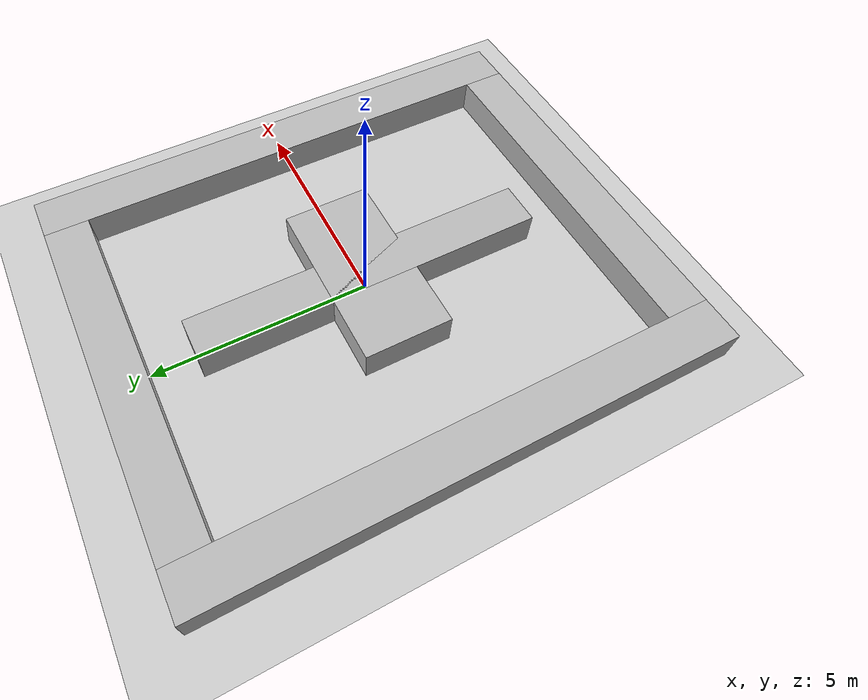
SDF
<sdf version='1.6'>
  <world name='default'>

    <include>
      <uri>model://ground_plane</uri>
    </include>

    <include>
      <uri>model://sun</uri>
    </include>

    <model name='brick_wall_u'>
      <static>1</static>
      <link name='chassis'>
        <pose frame=''>0 0 0 0 0 0</pose>
        <collision name='collision'>
          <geometry>
            <box>
              <size>8 1 1.5</size>
            </box>
          </geometry>
          <max_contacts>10</max_contacts>
        </collision>
        <visual name='visual'>
          <geometry>
            <mesh>
              <uri>model://brick_box_3x1x3/meshes/simple_box.dae</uri>
              <scale>8 1 1.5</scale>
            </mesh>
          </geometry>
          <material>
            <script>
              <uri>model://brick_box_3x1x3/materials/scripts</uri>
              <uri>model://brick_box_3x1x3/materials/textures</uri>
              <name>BrickBox/Diffuse</name>
            </script>
          </material>
        </visual>
        <self_collide>0</self_collide>
        <kinematic>0</kinematic>
        <gravity>1</gravity>
      </link>
      <pose frame=''>0 5.5 0 0 0 0</pose>
    </model>

    <model name='brick_wall_d'>
      <static>1</static>
      <link name='chassis'>
        <pose frame=''>0 0 0 0 0 0</pose>
        <collision name='collision'>
          <geometry>
            <box>
              <size>8 1 1.5</size>
            </box>
          </geometry>
          <max_contacts>10</max_contacts>
        </collision>
        <visual name='visual'>
          <geometry>
            <mesh>
              <uri>model://brick_box_3x1x3/meshes/simple_box.dae</uri>
              <scale>8 1 1.5</scale>
            </mesh>
          </geometry>
          <material>
            <script>
              <uri>model://brick_box_3x1x3/materials/scripts</uri>
              <uri>model://brick_box_3x1x3/materials/textures</uri>
              <name>BrickBox/Diffuse</name>
            </script>
          </material>
        </visual>
        <self_collide>0</self_collide>
        <kinematic>0</kinematic>
        <gravity>1</gravity>
      </link>
      <pose frame=''>0 -5.5 0 0 0 0</pose>
    </model>

    <model name='brick_wall_l'>
      <static>1</static>
      <link name='chassis'>
        <pose frame=''>0 0 0 0 0 0</pose>
        <collision name='collision'>
          <geometry>
            <box>
              <size>1 12 1.5</size>
            </box>
          </geometry>
          <max_contacts>10</max_contacts>
        </collision>
        <visual name='visual'>
          <geometry>
            <mesh>
              <uri>model://brick_box_3x1x3/meshes/simple_box.dae</uri>
              <scale>1 12 1.5</scale>
            </mesh>
          </geometry>
          <material>
            <script>
              <uri>model://brick_box_3x1x3/materials/scripts</uri>
              <uri>model://brick_box_3x1x3/materials/textures</uri>
              <name>BrickBox/Diffuse</name>
            </script>
          </material>
        </visual>
        <self_collide>0</self_collide>
        <kinematic>0</kinematic>
        <gravity>1</gravity>
      </link>
      <pose frame=''>-4.5 0 0 0 0 0</pose>
    </model>

    <model name='brick_wall_r'>
      <static>1</static>
      <link name='chassis'>
        <pose frame=''>0 0 0 0 0 0</pose>
        <collision name='collision'>
          <geometry>
            <box>
              <size>1 12 1.5</size>
            </box>
          </geometry>
          <max_contacts>10</max_contacts>
        </collision>
        <visual name='visual'>
          <geometry>
            <mesh>
              <uri>model://brick_box_3x1x3/meshes/simple_box.dae</uri>
              <scale>1 12 1.5</scale>
            </mesh>
          </geometry>
          <material>
            <script>
              <uri>model://brick_box_3x1x3/materials/scripts</uri>
              <uri>model://brick_box_3x1x3/materials/textures</uri>
              <name>BrickBox/Diffuse</name>
            </script>
          </material>
        </visual>
        <self_collide>0</self_collide>
        <kinematic>0</kinematic>
        <gravity>1</gravity>
      </link>
      <pose frame=''>4.5 0 0 0 0 0</pose>
    </model>

    <model name='brick_wall_mh'>
      <static>1</static>
      <link name='chassis'>
        <pose frame=''>0 0 0 0 0 0</pose>
        <collision name='collision'>
          <geometry>
            <box>
              <size>4 2 1.5</size>
            </box>
          </geometry>
          <max_contacts>10</max_contacts>
        </collision>
        <visual name='visual'>
          <geometry>
            <mesh>
              <uri>model://brick_box_3x1x3/meshes/simple_box.dae</uri>
              <scale>4 2 1.5</scale>
            </mesh>
          </geometry>
          <material>
            <script>
              <uri>model://brick_box_3x1x3/materials/scripts</uri>
              <uri>model://brick_box_3x1x3/materials/textures</uri>
              <name>BrickBox/Diffuse</name>
            </script>
          </material>
        </visual>
        <self_collide>0</self_collide>
        <kinematic>0</kinematic>
        <gravity>1</gravity>
      </link>
      <pose frame=''>0 0 0 0 0 0</pose>
    </model>

    <model name='brick_wall_mv'>
      <static>1</static>
      <link name='chassis'>
        <pose frame=''>0 0 0 0 0 0</pose>
        <collision name='collision'>
          <geometry>
            <box>
              <size>1 8 1.5</size>
            </box>
          </geometry>
          <max_contacts>10</max_contacts>
        </collision>
        <visual name='visual'>
          <geometry>
            <mesh>
              <uri>model://brick_box_3x1x3/meshes/simple_box.dae</uri>
              <scale>1 8 1.5</scale>
            </mesh>
          </geometry>
          <material>
            <script>
              <uri>model://brick_box_3x1x3/materials/scripts</uri>
              <uri>model://brick_box_3x1x3/materials/textures</uri>
              <name>BrickBox/Diffuse</name>
            </script>
          </material>
        </visual>
        <self_collide>0</self_collide>
        <kinematic>0</kinematic>
        <gravity>1</gravity>
      </link>
      <pose frame=''>0 0 0 0 0 0</pose>
    </model>

  </world>
</sdf>
